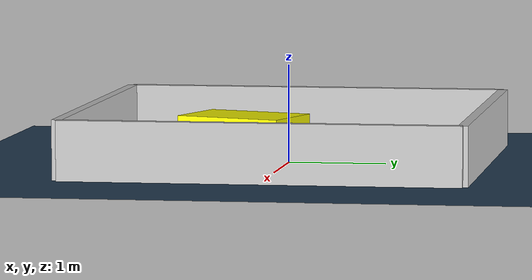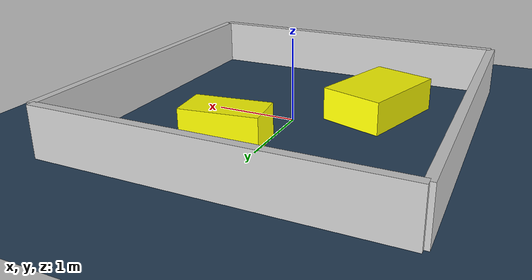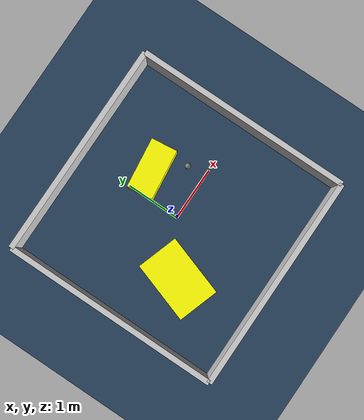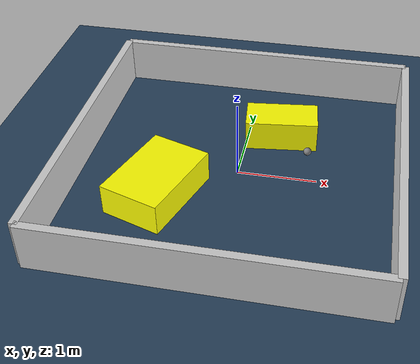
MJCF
<?xml version="1.0" ?>
<mujoco model="generated_environment">
  <option timestep="0.01" integrator="RK4" cone="elliptic"/>
  <default>
    <geom density="1"/>
  </default>
  <asset>
    <texture builtin="gradient" height="3072" rgb1="0.3 0.5 0.7" rgb2="0 0 0" type="skybox" width="512"/>
    <texture builtin="checker" height="300" mark="edge" markrgb="0.8 0.8 0.8" name="groundplane" rgb1="0.2 0.3 0.4" rgb2="0.1 0.2 0.3" type="2d" width="300"/>
    <material name="groundplane" reflectance="0.2" texrepeat="5 5" texture="groundplane" texuniform="true"/>
    <material name="robot" rgba="0.0 1.0 0.0 1"/>
  </asset>
  <worldbody>
    <light dir="0 0 -1" directional="true" pos="0 0 1.5"/>
    <geom condim="4" friction="1.0 0.005 0.001" material="groundplane" name="floor" size="0 0 0.05" type="plane"/>
    <body name="walls">
      <geom name="wall_1" condim="4" pos="-2.0 0.0 0.3" rgba="0.800000011920929 0.800000011920929 0.800000011920929 1.0" size="0.05 2.0 0.3" type="box"/>
      <geom name="wall_2" condim="4" pos="2.0 0.0 0.3" rgba="0.800000011920929 0.800000011920929 0.800000011920929 1.0" size="0.05 2.0 0.3" type="box"/>
      <geom name="wall_3" condim="4" pos="0.0 -2.0 0.3" rgba="0.800000011920929 0.800000011920929 0.800000011920929 1.0" size="2.0 0.05 0.3" type="box"/>
      <geom name="wall_4" condim="4" pos="0.0 2.0 0.3" rgba="0.800000011920929 0.800000011920929 0.800000011920929 1.0" size="2.0 0.05 0.3" type="box"/>
    </body>
    <body name="robot">
      <joint name="joint_x" type="slide" pos="0 0 0" axis="1 0 0"/>
      <joint name="joint_y" type="slide" pos="0 0 0" axis="0 1 0"/>
      <geom name="robot" type="sphere" pos="0.8414455897637914 0.3377289858298216 0.2" size="0.05" mass="5." friction="1.0 0.005 0.0001" condim="4"/>
      <site name="sensor_ball"/>
    </body>
    <body name="obstacle_1_movable">
      <geom name="obstacle_1_movable" condim="4" pos="-0.8711202693710988 -0.6081672985776905 0.2" euler="0 0 251.8166385883172" friction="1.0 0.005 0.001" rgba="1 1 0 1" size="0.5752861816264181 0.3869906997279545 0.2" type="box" mass="0.1"/>
      <joint type="free"/>
    </body>
    <body name="obstacle_2_movable">
      <geom name="obstacle_2_movable" condim="4" pos="0.4423764937669108 0.812657341239531 0.2" euler="0 0 6.746039241768185" friction="1.0 0.005 0.001" rgba="1 1 0 1" size="0.4655387096696498 0.24088431486904224 0.2" type="box" mass="0.1"/>
      <joint type="free"/>
    </body>
  </worldbody>
  <actuator>
    <motor name="actuator_x" joint="joint_x" gear="1" ctrlrange="-1 1"/>
    <motor name="actuator_y" joint="joint_y" gear="1" ctrlrange="-1 1"/>
  </actuator>
</mujoco>
